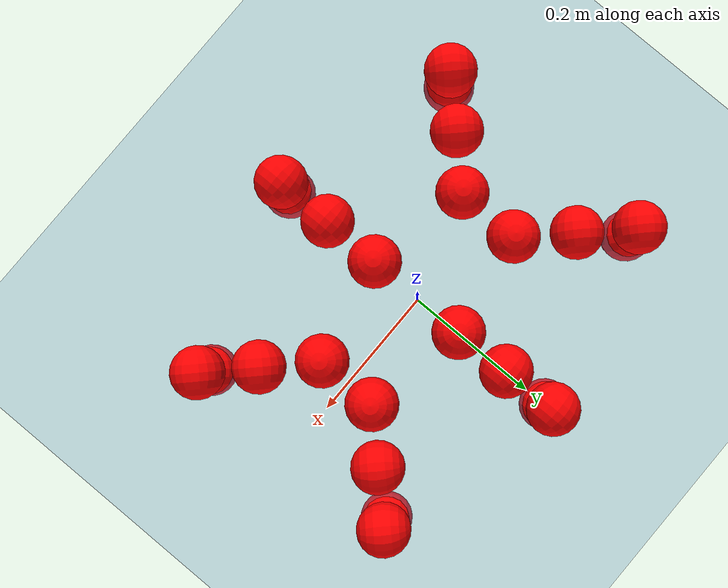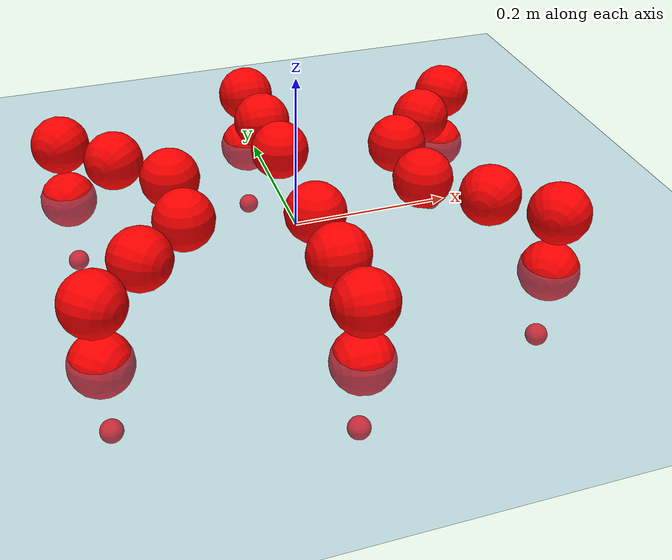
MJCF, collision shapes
<mujoco model="Golem">
  <compiler angle="radian" assetdir="assets" balanceinertia="true" inertiafromgeom="false"/>

  <option timestep="0.005" density="1.2" viscosity="2e-05"/>

  <size nkey="1"/>

  <visual>
    <quality shadowsize="8192"/>
    <map shadowclip="0.5"/>
  </visual>

  <default>
    <default class="/">
      <joint armature="0.01" damping="0.01" frictionloss="0.01"/>
      <geom contype="0" conaffinity="0" group="1" solref="-1000 -80"/>
      <site size="0.01 0.005 0.005" group="5"/>
      <general forcelimited="true" biastype="affine" gainprm="25" biasprm="0 -25 -0.5"/>
      <default class="visual">
        <geom type="mesh" group="2"/>
      </default>
      <default class="collision">
        <geom group="3"/>
      </default>
      <default class="foot">
        <geom size="0.01 0 0" condim="6" group="4" priority="1" solimp="0.015 1 0.01"/>
      </default>
      <default class="reward_collision_sphere">
        <geom group="5" rgba="1 0 0 1"/>
      </default>
    </default>
  </default>

  <asset>
    <texture type="skybox" colorspace="auto" name="//unnamed_texture_0" builtin="gradient" rgb1="0.95 0.95 0.95" rgb2="0.95 0.95 0.95" width="100" height="600"/>
    <texture type="2d" colorspace="auto" name="texplane" builtin="checker" rgb1="0.345 0.575 0.748" rgb2="0.345 0.575 0.748" markrgb="1 1 1" width="512" height="512"/>
    <material name="MatPlane" class="/" texture="texplane" texuniform="true" texrepeat="2 2" specular="0.9"/>
    <mesh name="body" class="/" file="body.stl" scale="0.001 0.001 0.001"/>
    <mesh name="coxa" class="/" file="coxa.stl" scale="0.001 0.001 0.001"/>
    <mesh name="femur" class="/" file="femur.stl" scale="0.001 0.001 0.001"/>
    <mesh name="tibia" class="/" file="tibia.stl" scale="0.001 0.001 0.001"/>
    <mesh name="tarsus" class="/" file="tarsus.stl" scale="0.001 0.001 0.001"/>
  </asset>

  <worldbody>
    <geom name="floor" class="/" size="100 100 0.125" type="plane" group="0" material="MatPlane"/>
    <light name="toplight_shadow" class="/" pos="0 0 5" dir="0.0990148 0.0990148 -0.990148" type="directional" ambient="0.04 0.04 0.04" diffuse="0.55 0.55 0.55" specular="0.12 0.12 0.12"/>
    <light name="toplight_fill" class="/" pos="0 0 5" dir="0.0990148 0.0990148 -0.990148" type="directional" castshadow="false" ambient="0.04 0.04 0.04" diffuse="0.3 0.3 0.3" specular="0.08 0.08 0.08"/>
    <body name="trunk" pos="0.000752512 -0.000237103 -0.00078797" quat="1 -7.95476e-05 3.01697e-05 -3.54593e-05">
      <inertial pos="-0.000607176 -0.000426484 -0.00370294" quat="0.999994 -0.00245724 0.00248948 -0.00019965" mass="2.88839" diaginertia="0.00744514 0.00274733 0.0127656"/>
      <joint name="//unnamed_joint_0" type="free"/>
      <geom name="//unnamed_geom_1" class="/" pos="0 0 0.067311" quat="1 0 0 0" type="mesh" rgba="0.9 0.9 0.9 1" mesh="body"/>
      <site name="imu" class="/" pos="0.121997 7.36678e-05 0.10638" size="0.00923901"/>
      <camera name="track" class="/" pos="0 -1.54826 0" quat="0.707107 0.707107 0 0" mode="trackcom"/>
      <camera name="ego_camera" class="/" pos="0.122959 0 0.105173" quat="-0.5 -0.5 0.5 0.5"/>
      <body name="coxa_RR" pos="-0.168901 -0.0646307 0.0667001" quat="0.382636 -4.31119e-05 7.42073e-06 -0.923899">
        <inertial pos="-7.40834e-05 -0.000655046 9.68899e-05" quat="0.999997 0.000690615 -0.00240925 0.000296237" mass="0.154976" diaginertia="0.0075219 0.00273812 0.0126579"/>
        <joint name="coxa_joint_RR" class="/" pos="0 0 0" axis="-0.00252875 -0.000657516 -0.999997" range="-3.14027 3.15492" armature="0.0096713" damping="0.0105678" frictionloss="0.00934548"/>
        <geom name="//unnamed_geom_2" class="/" type="mesh" rgba="0.2 0.2 0.2 1" mesh="coxa"/>
        <geom name="//unnamed_geom_3" class="reward_collision_sphere" size="0.036956" pos="-0.0283752 0 0"/>
        <body name="femur_RR" pos="0.0566632 -0.00026367 0.000321977" quat="0.500003 -0.500153 0.499573 0.500271">
          <inertial pos="-0.000385229 -0.000934247 0.000899422" quat="1 -0.000302321 -0.000823391 4.5163e-05" mass="0.157716" diaginertia="0.00757951 0.00279132 0.0128703"/>
          <joint name="femur_joint_RR" class="/" pos="0 0 0" axis="-0.000491711 0.000810794 -1" stiffness="0.00176476" range="-3.13192 3.13235" armature="0.00963083" damping="0" frictionloss="0.00889598"/>
          <geom name="//unnamed_geom_4" class="/" type="mesh" rgba="0.9 0.9 0.9 1" mesh="femur"/>
          <geom name="//unnamed_geom_5" class="reward_collision_sphere" size="0.036956"/>
          <body name="tibia_RR" pos="0.000926816 -0.0839763 0.000634917" quat="3.91654e-05 1 0.000421354 0.000106019">
            <inertial pos="0.000247913 0.000978716 0.000189945" quat="0.999996 0.000627295 0.00283866 -0.000560375" mass="0.157733" diaginertia="0.00756931 0.00276781 0.0127411"/>
            <joint name="tibia_joint_RR" class="/" pos="0 0 0" axis="0.00141792 0.00592774 0.999981" range="-3.1516 3.14839" armature="0.009518" damping="0.00176331" frictionloss="0.00924742"/>
            <geom name="//unnamed_geom_6" class="/" type="mesh" rgba="0.2 0.2 0.2 1" mesh="tibia"/>
            <geom name="//unnamed_geom_7" class="reward_collision_sphere" size="0.036956"/>
            <body name="tarsus_RR" pos="0.0824248 0.00076002 0.0002258" quat="1 -2.93838e-05 -7.8023e-05 -5.47437e-05">
              <inertial pos="0.0573085 0.000649542 0.000648821" quat="0.498526 0.500475 0.500273 0.500722" mass="0.159065" diaginertia="0.00761419 0.00276612 0.0129333"/>
              <joint name="tarsus_joint_RR" class="/" pos="0 0 0" axis="-0.00127827 0.00160449 0.999998" range="-3.13211 3.13881" armature="0.00891054" damping="0.00844578" frictionloss="0.00902369"/>
              <geom name="//unnamed_geom_8" class="/" type="mesh" rgba="0.9 0.9 0.9 1" mesh="tarsus"/>
              <geom name="foot_1" class="foot" size="0.00939031" pos="0.105934 0 0" quat="0 -0.707107 0 0.707107"/>
              <geom name="//unnamed_geom_10" class="reward_collision_sphere" size="0.036956"/>
              <geom name="//unnamed_geom_11" class="reward_collision_sphere" size="0.0138585" pos="0.101678 0 0"/>
              <site name="foot_1" class="foot" pos="0.105934 0 0" quat="0 -0.707107 0 0.707107" size="0.00923901"/>
            </body>
          </body>
        </body>
      </body>
      <body name="coxa_RM" pos="-0.000625196 -0.103921 0.0671867" quat="0.70738 -0.000108033 -0.000284778 -0.706833">
        <inertial pos="0.000209367 -5.35349e-05 0.000971757" quat="0.999999 -0.000357147 -0.000836229 -0.00142288" mass="0.157212" diaginertia="0.00740086 0.00275934 0.0128968"/>
        <joint name="coxa_joint_RM" class="/" pos="0 0 0" axis="0.000149022 -0.000162764 -1" range="-3.15998 3.13629" armature="0.00946071" damping="0.011803" frictionloss="0.00928153"/>
        <geom name="//unnamed_geom_12" class="/" type="mesh" rgba="0.2 0.2 0.2 1" mesh="coxa"/>
        <geom name="//unnamed_geom_13" class="reward_collision_sphere" size="0.036956" pos="-0.0283752 0 0"/>
        <body name="femur_RM" pos="0.0559507 -0.00107265 -0.000945061" quat="0.50004 -0.500028 0.499965 0.499966">
          <inertial pos="-0.000564807 0.000480901 -0.000451573" quat="1 0.000152709 0.000177421 4.84541e-05" mass="0.157055" diaginertia="0.00753839 0.00278384 0.0128305"/>
          <joint name="femur_joint_RM" class="/" pos="0 0 0" axis="0.00195826 0.000123558 -0.999998" range="-3.13895 3.13792" armature="0.00929579" damping="0.0118388" frictionloss="0.00945681"/>
          <geom name="//unnamed_geom_14" class="/" type="mesh" rgba="0.9 0.9 0.9 1" mesh="femur"/>
          <geom name="//unnamed_geom_15" class="reward_collision_sphere" size="0.036956"/>
          <body name="tibia_RM" pos="0.000729857 -0.0829307 -0.000248699" quat="-0.000168552 1 0.00016591 0.000145604">
            <inertial pos="0.000517938 0.000412533 -0.00025445" quat="0.999997 0.00135847 0.00187978 -0.000284375" mass="0.158935" diaginertia="0.00761738 0.00280391 0.0128328"/>
            <joint name="tibia_joint_RM" class="/" pos="0 0 0" axis="0.00353001 0.000715336 0.999994" range="-3.15547 3.11159" armature="0.00893795" damping="0" frictionloss="0.00909899"/>
            <geom name="//unnamed_geom_16" class="/" type="mesh" rgba="0.2 0.2 0.2 1" mesh="tibia"/>
            <geom name="//unnamed_geom_17" class="reward_collision_sphere" size="0.036956"/>
            <body name="tarsus_RM" pos="0.0823187 -0.000783658 -0.000579152" quat="1 -0.000256546 0.000112084 -0.000185147">
              <inertial pos="0.0560873 0.00103854 -0.000121375" quat="0.499943 0.499668 0.500078 0.50031" mass="0.157043" diaginertia="0.00762062 0.00282209 0.013117"/>
              <joint name="tarsus_joint_RM" class="/" pos="0 0 0" axis="0.00574284 0.000711164 0.999983" range="-3.13965 3.12856" armature="0.00879998" damping="0.00437726" frictionloss="0.00922788"/>
              <geom name="//unnamed_geom_18" class="/" type="mesh" rgba="0.9 0.9 0.9 1" mesh="tarsus"/>
              <geom name="foot_2" class="foot" size="0.00910751" pos="0.105934 0 0" quat="0 -0.707107 0 0.707107"/>
              <geom name="//unnamed_geom_20" class="reward_collision_sphere" size="0.036956"/>
              <geom name="//unnamed_geom_21" class="reward_collision_sphere" size="0.0138585" pos="0.101678 0 0"/>
              <site name="foot_2" class="foot" pos="0.105934 0 0" quat="0 -0.707107 0 0.707107" size="0.00923901"/>
            </body>
          </body>
        </body>
      </body>
      <body name="coxa_RF" pos="0.167396 -0.0633803 0.0677538" quat="0.923907 0.000259716 0.000259377 -0.382616">
        <inertial pos="-1.26333e-05 0.000395335 0.000157172" quat="0.999989 -0.00237821 0.00399929 0.000136193" mass="0.160359" diaginertia="0.00778066 0.00277819 0.0132198"/>
        <joint name="coxa_joint_RF" class="/" pos="0 0 0" axis="-0.00640573 0.00148878 -0.999978" range="-3.1207 3.13659" armature="0.00944776" damping="0.0047967" frictionloss="0.00881977"/>
        <geom name="//unnamed_geom_22" class="/" type="mesh" rgba="0.2 0.2 0.2 1" mesh="coxa"/>
        <geom name="//unnamed_geom_23" class="reward_collision_sphere" size="0.036956" pos="-0.0283752 0 0"/>
        <body name="femur_RF" pos="0.0565454 0.000484189 0.00068904" quat="0.499959 -0.500019 0.500102 0.49992">
          <inertial pos="-0.000222977 0.000761377 0.00037759" quat="0.999999 0.000713885 -0.0009682 0.000517169" mass="0.155688" diaginertia="0.00751491 0.00273974 0.0128289"/>
          <joint name="femur_joint_RF" class="/" pos="0 0 0" axis="0.000431203 0.000939334 -0.999999" range="-3.14946 3.12713" armature="0.00868552" damping="0.0121945" frictionloss="0.00875766"/>
          <geom name="//unnamed_geom_24" class="/" type="mesh" rgba="0.9 0.9 0.9 1" mesh="femur"/>
          <geom name="//unnamed_geom_25" class="reward_collision_sphere" size="0.036956"/>
          <body name="tibia_RF" pos="4.12701e-05 -0.0829832 0.000291129" quat="-2.51124e-06 1 9.36908e-06 -3.73782e-06">
            <inertial pos="-0.000406141 -0.00027119 -0.000117776" quat="0.999999 -0.00116018 -0.000888281 -0.000414757" mass="0.159439" diaginertia="0.00769691 0.00281216 0.0130226"/>
            <joint name="tibia_joint_RF" class="/" pos="0 0 0" axis="-0.00110524 0.00301269 0.999995" range="-3.15723 3.13294" armature="0.00931342" damping="0" frictionloss="0.00880895"/>
            <geom name="//unnamed_geom_26" class="/" type="mesh" rgba="0.2 0.2 0.2 1" mesh="tibia"/>
            <geom name="//unnamed_geom_27" class="reward_collision_sphere" size="0.036956"/>
            <body name="tarsus_RF" pos="0.0823449 5.79957e-05 0.00055526" quat="1 -0.000174247 -0.000275716 -0.000257096">
              <inertial pos="0.0565317 0.00115142 0.000160413" quat="0.497077 0.49973 0.505209 0.497944" mass="0.160376" diaginertia="0.00765928 0.00278325 0.0128684"/>
              <joint name="tarsus_joint_RF" class="/" pos="0 0 0" axis="-1.14657e-05 -0.00122268 0.999999" range="-3.14664 3.13636" armature="0.00892864" damping="0.00803262" frictionloss="0.0092663"/>
              <geom name="//unnamed_geom_28" class="/" type="mesh" rgba="0.9 0.9 0.9 1" mesh="tarsus"/>
              <geom name="foot_3" class="foot" size="0.00930939" pos="0.105934 0 0" quat="0 -0.707107 0 0.707107"/>
              <geom name="//unnamed_geom_30" class="reward_collision_sphere" size="0.036956"/>
              <geom name="//unnamed_geom_31" class="reward_collision_sphere" size="0.0138585" pos="0.101678 0 0"/>
              <site name="foot_3" class="foot" pos="0.105934 0 0" quat="0 -0.707107 0 0.707107" size="0.00923901"/>
            </body>
          </body>
        </body>
      </body>
      <body name="coxa_LR" pos="-0.167208 0.0669157 0.0680221" quat="0.38257 8.8594e-05 0.000143347 0.923927">
        <inertial pos="-0.000373903 -0.000250772 0.000985422" quat="0.999994 0.00149499 0.00257675 -0.00164824" mass="0.159902" diaginertia="0.0075205 0.00279892 0.0128539"/>
        <joint name="coxa_joint_LR" class="/" pos="0 0 0" axis="0.00219929 -0.0018086 -0.999996" range="-3.13929 3.12329" armature="0.00904537" damping="0.00891665" frictionloss="0.009098"/>
        <geom name="//unnamed_geom_32" class="/" type="mesh" rgba="0.2 0.2 0.2 1" mesh="coxa"/>
        <geom name="//unnamed_geom_33" class="reward_collision_sphere" size="0.036956" pos="-0.0283752 0 0"/>
        <body name="femur_LR" pos="0.0576796 -0.00220848 -0.000730689" quat="0.499823 -0.500112 0.500239 0.499826">
          <inertial pos="-0.000212726 -0.00078284 0.000364448" quat="1 0.000204742 0.000146987 6.81074e-05" mass="0.156923" diaginertia="0.00740141 0.00275543 0.012747"/>
          <joint name="femur_joint_LR" class="/" pos="0 0 0" axis="0.00305462 -0.000894549 0.999995" range="-3.12498 3.15053" armature="0.00988679" damping="0.0104726" frictionloss="0.00930345"/>
          <geom name="//unnamed_geom_34" class="/" type="mesh" rgba="0.9 0.9 0.9 1" mesh="femur"/>
          <geom name="//unnamed_geom_35" class="reward_collision_sphere" size="0.036956"/>
          <body name="tibia_LR" pos="0.000574997 -0.0853007 -0.000511496" quat="-3.09539e-05 1 3.33443e-05 -4.08275e-05">
            <inertial pos="-0.000465044 -0.000284417 0.000248762" quat="0.99999 -0.00303481 -0.00322749 -0.000271241" mass="0.160179" diaginertia="0.00772538 0.00277259 0.0128538"/>
            <joint name="tibia_joint_LR" class="/" pos="0 0 0" axis="-0.000951984 0.000430563 -0.999999" range="-3.14155 3.13507" armature="0.00927794" damping="0.00202005" frictionloss="0.00888571"/>
            <geom name="//unnamed_geom_36" class="/" type="mesh" rgba="0.2 0.2 0.2 1" mesh="tibia"/>
            <geom name="//unnamed_geom_37" class="reward_collision_sphere" size="0.036956"/>
            <body name="tarsus_LR" pos="0.0849956 0.00142116 0.00133493" quat="1 0.0002753 -0.000210137 -0.000279665">
              <inertial pos="0.0589365 -0.000553442 0.000591573" quat="0.500674 0.499689 0.498848 0.500786" mass="0.159581" diaginertia="0.00755953 0.00274998 0.0129394"/>
              <joint name="tarsus_joint_LR" class="/" pos="0 0 0" axis="-0.00478237 0.00134754 -0.999988" range="-3.1297 3.13704" armature="0.00932678" damping="0.0268996" frictionloss="0.0093832"/>
              <geom name="//unnamed_geom_38" class="/" type="mesh" rgba="0.9 0.9 0.9 1" mesh="tarsus"/>
              <geom name="foot_4" class="foot" size="0.00936622" pos="0.105934 0 0" quat="0.707107 0 -0.707107 0"/>
              <geom name="//unnamed_geom_40" class="reward_collision_sphere" size="0.036956"/>
              <geom name="//unnamed_geom_41" class="reward_collision_sphere" size="0.0138585" pos="0.101678 0 0"/>
              <site name="foot_4" class="foot" pos="0.105934 0 0" quat="0.707107 0 -0.707107 0" size="0.00923901"/>
            </body>
          </body>
        </body>
      </body>
      <body name="coxa_LM" pos="0.000140587 0.101435 0.0675173" quat="0.707141 0.000444663 0.000286699 0.707072">
        <inertial pos="-0.000582883 -0.000314611 -0.00026607" quat="0.99999 0.00380511 -0.000894082 -0.00223421" mass="0.158407" diaginertia="0.00756634 0.00281321 0.0129288"/>
        <joint name="coxa_joint_LM" class="/" pos="0 0 0" axis="0.000425051 0.00187444 -0.999998" range="-3.15427 3.15888" armature="0.00927467" damping="0.00921063" frictionloss="0.00915488"/>
        <geom name="//unnamed_geom_42" class="/" type="mesh" rgba="0.2 0.2 0.2 1" mesh="coxa"/>
        <geom name="//unnamed_geom_43" class="reward_collision_sphere" size="0.036956" pos="-0.0283752 0 0"/>
        <body name="femur_LM" pos="0.0539831 0.00107202 -0.000190455" quat="0.499914 -0.500077 0.499974 0.500034">
          <inertial pos="-0.000761104 -0.000760057 0.000726583" quat="1 -7.41104e-05 4.6928e-05 9.87148e-05" mass="0.158124" diaginertia="0.00749179 0.00277019 0.0127402"/>
          <joint name="femur_joint_LM" class="/" pos="0 0 0" axis="-0.00541891 -0.000315792 0.999985" range="-3.14893 3.13156" armature="0.00914549" damping="0.000946807" frictionloss="0.00888556"/>
          <geom name="//unnamed_geom_44" class="/" type="mesh" rgba="0.9 0.9 0.9 1" mesh="femur"/>
          <geom name="//unnamed_geom_45" class="reward_collision_sphere" size="0.036956"/>
          <body name="tibia_LM" pos="-0.000925044 -0.0804403 0.00141993" quat="0.000101815 1 -6.01005e-05 -9.86453e-06">
            <inertial pos="-0.00108535 -0.000620354 -0.000284491" quat="0.999998 0.00122706 -0.00158167 0.000407926" mass="0.154708" diaginertia="0.0074709 0.0027136 0.0125721"/>
            <joint name="tibia_joint_LM" class="/" pos="0 0 0" axis="-0.00496182 0.00284435 -0.999984" range="-3.13477 3.13726" armature="0.00910836" damping="0.00197995" frictionloss="0.00932604"/>
            <geom name="//unnamed_geom_46" class="/" type="mesh" rgba="0.2 0.2 0.2 1" mesh="tibia"/>
            <geom name="//unnamed_geom_47" class="reward_collision_sphere" size="0.036956"/>
            <body name="tarsus_LM" pos="0.0830942 -0.0003378 -0.000448791" quat="1 0.000302896 -6.903e-05 -5.65157e-05">
              <inertial pos="0.0570895 -0.00110154 -0.000330534" quat="0.501797 0.497928 0.497764 0.502493" mass="0.159104" diaginertia="0.00747485 0.00276645 0.0128231"/>
              <joint name="tarsus_joint_LM" class="/" pos="0 0 0" axis="0.00101708 -0.000393716 -0.999999" range="-3.13435 3.13124" armature="0.00923168" damping="0" frictionloss="0.00928124"/>
              <geom name="//unnamed_geom_48" class="/" type="mesh" rgba="0.9 0.9 0.9 1" mesh="tarsus"/>
              <geom name="foot_5" class="foot" size="0.00892003" pos="0.105934 0 0" quat="0.707107 0 -0.707107 0"/>
              <geom name="//unnamed_geom_50" class="reward_collision_sphere" size="0.036956"/>
              <geom name="//unnamed_geom_51" class="reward_collision_sphere" size="0.0138585" pos="0.101678 0 0"/>
              <site name="foot_5" class="foot" pos="0.105934 0 0" quat="0.707107 0 -0.707107 0" size="0.00923901"/>
            </body>
          </body>
        </body>
      </body>
      <body name="coxa_LF" pos="0.169062 0.0654703 0.0670696" quat="0.923948 -9.93888e-06 -0.000249652 0.382519">
        <inertial pos="-0.000159554 -7.09465e-06 -4.59798e-05" quat="1 0.000794717 -0.000319448 5.3031e-05" mass="0.15878" diaginertia="0.00754082 0.0027518 0.0129731"/>
        <joint name="coxa_joint_LF" class="/" pos="0 0 0" axis="-0.00242015 0.000296174 -0.999997" range="-3.1283 3.1433" armature="0.00934847" damping="0" frictionloss="0.00934838"/>
        <geom name="//unnamed_geom_52" class="/" type="mesh" rgba="0.2 0.2 0.2 1" mesh="coxa"/>
        <geom name="//unnamed_geom_53" class="reward_collision_sphere" size="0.036956" pos="-0.0283752 0 0"/>
        <body name="femur_LF" pos="0.0561869 0.000823664 -0.000582136" quat="0.500129 -0.49977 0.500049 0.500052">
          <inertial pos="-0.000178203 -0.000348763 0.0003776" quat="0.999993 -0.00360256 -0.000300228 0.00132015" mass="0.160228" diaginertia="0.00760328 0.00276691 0.0128349"/>
          <joint name="femur_joint_LF" class="/" pos="0 0 0" axis="0.00136085 -0.00105017 0.999999" range="-3.13332 3.13765" armature="0.00911551" damping="0" frictionloss="0.00928607"/>
          <geom name="//unnamed_geom_54" class="/" type="mesh" rgba="0.9 0.9 0.9 1" mesh="femur"/>
          <geom name="//unnamed_geom_55" class="reward_collision_sphere" size="0.036956"/>
          <body name="tibia_LF" pos="-3.1984e-05 -0.0824702 0.000731707" quat="-0.000138834 1 2.11222e-05 -0.000314242">
            <inertial pos="0.000346422 0.000687512 -0.000396104" quat="0.999995 -0.000519556 0.00305845 -9.94637e-05" mass="0.156528" diaginertia="0.00752778 0.00279049 0.0128871"/>
            <joint name="tibia_joint_LF" class="/" pos="0 0 0" axis="0.000624255 -0.000704717 -1" range="-3.11435 3.12399" armature="0.00918079" damping="0.00201283" frictionloss="0.0092436"/>
            <geom name="//unnamed_geom_56" class="/" type="mesh" rgba="0.2 0.2 0.2 1" mesh="tibia"/>
            <geom name="//unnamed_geom_57" class="reward_collision_sphere" size="0.036956"/>
            <body name="tarsus_LF" pos="0.0834453 0.000166224 -0.00077343" quat="1 -0.000260877 9.99971e-05 0.000358283">
              <inertial pos="0.0562514 0.000356204 4.90856e-05" quat="0.500398 0.50006 0.499784 0.499759" mass="0.160604" diaginertia="0.00770079 0.00283123 0.0130941"/>
              <joint name="tarsus_joint_LF" class="/" pos="0 0 0" axis="-0.000155995 -0.00120038 -0.999999" range="-3.139 3.14372" armature="0.00933081" damping="0.017959" frictionloss="0.00976109"/>
              <geom name="//unnamed_geom_58" class="/" type="mesh" rgba="0.9 0.9 0.9 1" mesh="tarsus"/>
              <geom name="foot_6" class="foot" size="0.0092608" pos="0.105934 0 0" quat="0.707107 0 -0.707107 0"/>
              <geom name="//unnamed_geom_60" class="reward_collision_sphere" size="0.036956"/>
              <geom name="//unnamed_geom_61" class="reward_collision_sphere" size="0.0138585" pos="0.101678 0 0"/>
              <site name="foot_6" class="foot" pos="0.105934 0 0" quat="0.707107 0 -0.707107 0" size="0.00923901"/>
            </body>
          </body>
        </body>
      </body>
    </body>
  </worldbody>

  <contact>
    <pair class="/" geom1="floor" geom2="foot_1" name="//unnamed_contact_0"/>
    <pair class="/" geom1="floor" geom2="foot_2" name="//unnamed_contact_1"/>
    <pair class="/" geom1="floor" geom2="foot_3" name="//unnamed_contact_2"/>
    <pair class="/" geom1="floor" geom2="foot_4" name="//unnamed_contact_3"/>
    <pair class="/" geom1="floor" geom2="foot_5" name="//unnamed_contact_4"/>
    <pair class="/" geom1="floor" geom2="foot_6" name="//unnamed_contact_5"/>
  </contact>

  <actuator>
    <general name="coxa_joint_RR" class="/" joint="coxa_joint_RR" forcerange="-6.51857 6.51857" gainprm="22.5378" biasprm="0 -22.5378 -0.483011"/>
    <general name="femur_joint_RR" class="/" joint="femur_joint_RR" forcerange="-6.58941 6.58941" gainprm="22.5378" biasprm="0 -22.5378 -0.483011"/>
    <general name="tibia_joint_RR" class="/" joint="tibia_joint_RR" forcerange="-6.87337 6.87337" gainprm="22.5378" biasprm="0 -22.5378 -0.483011"/>
    <general name="tarsus_joint_RR" class="/" joint="tarsus_joint_RR" forcerange="-6.80785 6.80785" gainprm="22.5378" biasprm="0 -22.5378 -0.483011"/>
    <general name="coxa_joint_RM" class="/" joint="coxa_joint_RM" forcerange="-6.63194 6.63194" gainprm="22.5378" biasprm="0 -22.5378 -0.483011"/>
    <general name="femur_joint_RM" class="/" joint="femur_joint_RM" forcerange="-6.87544 6.87544" gainprm="22.5378" biasprm="0 -22.5378 -0.483011"/>
    <general name="tibia_joint_RM" class="/" joint="tibia_joint_RM" forcerange="-6.70289 6.70289" gainprm="22.5378" biasprm="0 -22.5378 -0.483011"/>
    <general name="tarsus_joint_RM" class="/" joint="tarsus_joint_RM" forcerange="-6.82497 6.82497" gainprm="22.5378" biasprm="0 -22.5378 -0.483011"/>
    <general name="coxa_joint_RF" class="/" joint="coxa_joint_RF" forcerange="-6.74429 6.74429" gainprm="22.5378" biasprm="0 -22.5378 -0.483011"/>
    <general name="femur_joint_RF" class="/" joint="femur_joint_RF" forcerange="-7.05482 7.05482" gainprm="22.5378" biasprm="0 -22.5378 -0.483011"/>
    <general name="tibia_joint_RF" class="/" joint="tibia_joint_RF" forcerange="-6.8903 6.8903" gainprm="22.5378" biasprm="0 -22.5378 -0.483011"/>
    <general name="tarsus_joint_RF" class="/" joint="tarsus_joint_RF" forcerange="-6.80756 6.80756" gainprm="22.5378" biasprm="0 -22.5378 -0.483011"/>
    <general name="coxa_joint_LR" class="/" joint="coxa_joint_LR" forcerange="-6.74 6.74" gainprm="22.5378" biasprm="0 -22.5378 -0.483011"/>
    <general name="femur_joint_LR" class="/" joint="femur_joint_LR" forcerange="-6.7772 6.7772" gainprm="22.5378" biasprm="0 -22.5378 -0.483011"/>
    <general name="tibia_joint_LR" class="/" joint="tibia_joint_LR" forcerange="-7.0177 7.0177" gainprm="22.5378" biasprm="0 -22.5378 -0.483011"/>
    <general name="tarsus_joint_LR" class="/" joint="tarsus_joint_LR" forcerange="-6.88782 6.88782" gainprm="22.5378" biasprm="0 -22.5378 -0.483011"/>
    <general name="coxa_joint_LM" class="/" joint="coxa_joint_LM" forcerange="-6.66718 6.66718" gainprm="22.5378" biasprm="0 -22.5378 -0.483011"/>
    <general name="femur_joint_LM" class="/" joint="femur_joint_LM" forcerange="-6.70702 6.70702" gainprm="22.5378" biasprm="0 -22.5378 -0.483011"/>
    <general name="tibia_joint_LM" class="/" joint="tibia_joint_LM" forcerange="-6.76312 6.76312" gainprm="22.5378" biasprm="0 -22.5378 -0.483011"/>
    <general name="tarsus_joint_LM" class="/" joint="tarsus_joint_LM" forcerange="-6.87791 6.87791" gainprm="22.5378" biasprm="0 -22.5378 -0.483011"/>
    <general name="coxa_joint_LF" class="/" joint="coxa_joint_LF" forcerange="-6.78059 6.78059" gainprm="22.5378" biasprm="0 -22.5378 -0.483011"/>
    <general name="femur_joint_LF" class="/" joint="femur_joint_LF" forcerange="-6.77817 6.77817" gainprm="22.5378" biasprm="0 -22.5378 -0.483011"/>
    <general name="tibia_joint_LF" class="/" joint="tibia_joint_LF" forcerange="-6.7048 6.7048" gainprm="22.5378" biasprm="0 -22.5378 -0.483011"/>
    <general name="tarsus_joint_LF" class="/" joint="tarsus_joint_LF" forcerange="-6.76135 6.76135" gainprm="22.5378" biasprm="0 -22.5378 -0.483011"/>
  </actuator>

  <sensor>
    <gyro site="imu" name="imu_angular_velocity"/>
    <velocimeter site="imu" name="imu_linear_velocity"/>
    <framelinvel objtype="site" objname="foot_1" name="foot_1_global_linear_velocity"/>
    <framelinvel objtype="site" objname="foot_2" name="foot_2_global_linear_velocity"/>
    <framelinvel objtype="site" objname="foot_3" name="foot_3_global_linear_velocity"/>
    <framelinvel objtype="site" objname="foot_4" name="foot_4_global_linear_velocity"/>
    <framelinvel objtype="site" objname="foot_5" name="foot_5_global_linear_velocity"/>
    <framelinvel objtype="site" objname="foot_6" name="foot_6_global_linear_velocity"/>
  </sensor>

  <keyframe>
    <key name="home" qpos="0 0 0.1457 1 0 0 0 0 0 0 0 0 0 0 0 0 0 0 0 0 0 0 0 0 0 0 0 0 0 0 0"/>
  </keyframe>
</mujoco>
